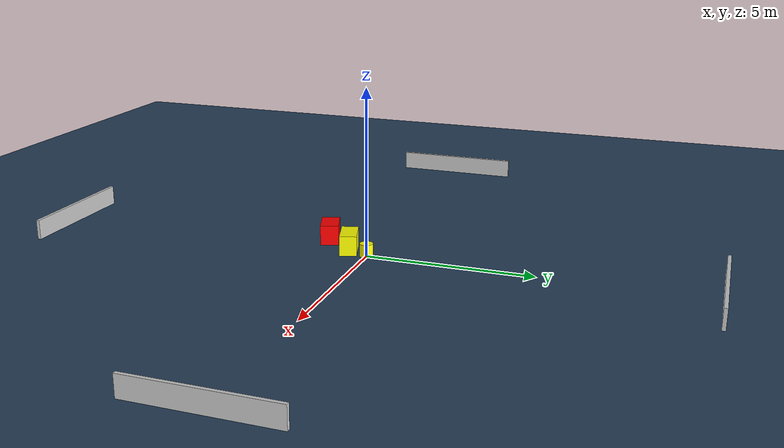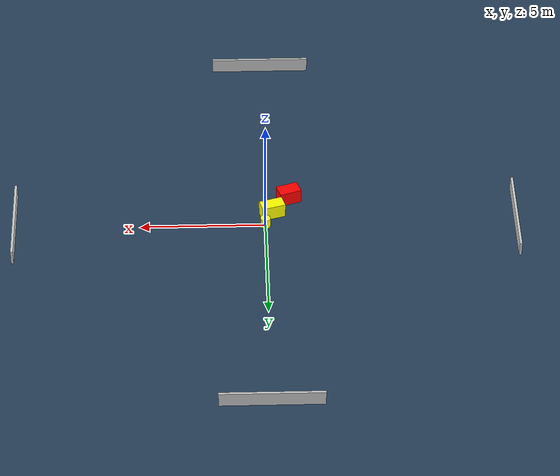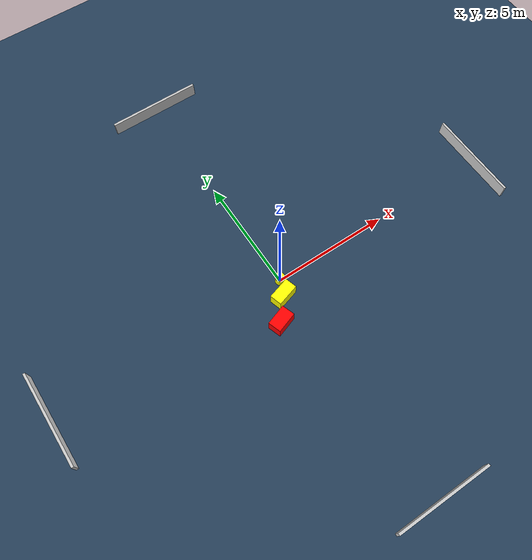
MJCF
<?xml version="1.0" ?>
<mujoco model="generated_environment">
  <option timestep="0.01" integrator="RK4" cone="elliptic"/>
  <default>
    <geom density="1"/>
  </default>
  <asset>
    <texture builtin="gradient" height="3072" name="skybox" rgb1="0.3 0.5 0.7" rgb2="0 0 0" type="skybox" width="512"/>
    <texture builtin="checker" height="300" name="groundplane" rgb1="0.2 0.3 0.4" rgb2="0.1 0.2 0.3" type="2d" width="300"/>
    <material name="groundplane" reflectance="0.2" texrepeat="5 5" texture="groundplane"/>
  </asset>
  <worldbody>
    <light dir="0 0 -1" directional="true" pos="0 0 1.5"/>
    <geom condim="3" friction="0.5 0.005 0.001" material="groundplane" name="floor" pos="0 0 0" size="0 0 0.05" type="plane"/>
    <body name="walls">
      <geom name="wall_1" condim="4" pos="-10.0 0.0 0.3" rgba="0.800000011920929 0.800000011920929 0.800000011920929 1.0" size="0.05 2.0 0.3" type="box"/>
      <geom name="wall_2" condim="4" pos="10.0 0.0 0.3" rgba="0.800000011920929 0.800000011920929 0.800000011920929 1.0" size="0.05 2.0 0.3" type="box"/>
      <geom name="wall_3" condim="4" pos="0.0 -10.0 0.3" rgba="0.800000011920929 0.800000011920929 0.800000011920929 1.0" size="2.0 0.05 0.3" type="box"/>
      <geom name="wall_4" condim="4" pos="0.0 10.0 0.3" rgba="0.800000011920929 0.800000011920929 0.800000011920929 1.0" size="2.0 0.05 0.3" type="box"/>
    </body>
    <body name="robot">
      <joint name="joint_x" type="slide" pos="0 0 0" axis="1 0 0"/>
      <joint name="joint_y" type="slide" pos="0 0 0" axis="0 1 0"/>
      <geom name="robot" type="cylinder" pos="0.0 0.0 0.2" size="0.2 0.2 0.0" mass="5.0" friction="1.0 0.005 0.0001" condim="4" rgba="1.0 1.0 0.0 1.0"/>
    </body>
    <body name="obstacle_1_movable">
      <geom name="obstacle_1_movable" condim="4" pos="-0.2830091363937522 -0.6545079058009085 0.3" euler="0 0 106.56740990168505" friction="0.0 0.005 0.001" rgba="1.0 1.0 0.0 1.0" size="0.2526687209449327 0.475153210398685 0.3" type="box" mass="0.1"/>
      <joint type="free"/>
    </body>
    <body name="obstacle_2_static">
      <geom name="obstacle_2_static" condim="4" pos="-0.9701620250064061 -1.5333154177683315 0.3" euler="0 0 288.6558184659002" friction="0.0 0.005 0.001" rgba="1.0 0.0 0.0 1.0" size="0.2750811800441677 0.4425609564311965 0.3" type="box"/>
    </body>
  </worldbody>
  <actuator>
    <motor name="actuator_x" joint="joint_x" gear="1" ctrlrange="-1 1"/>
    <motor name="actuator_y" joint="joint_y" gear="1" ctrlrange="-1 1"/>
  </actuator>
</mujoco>
